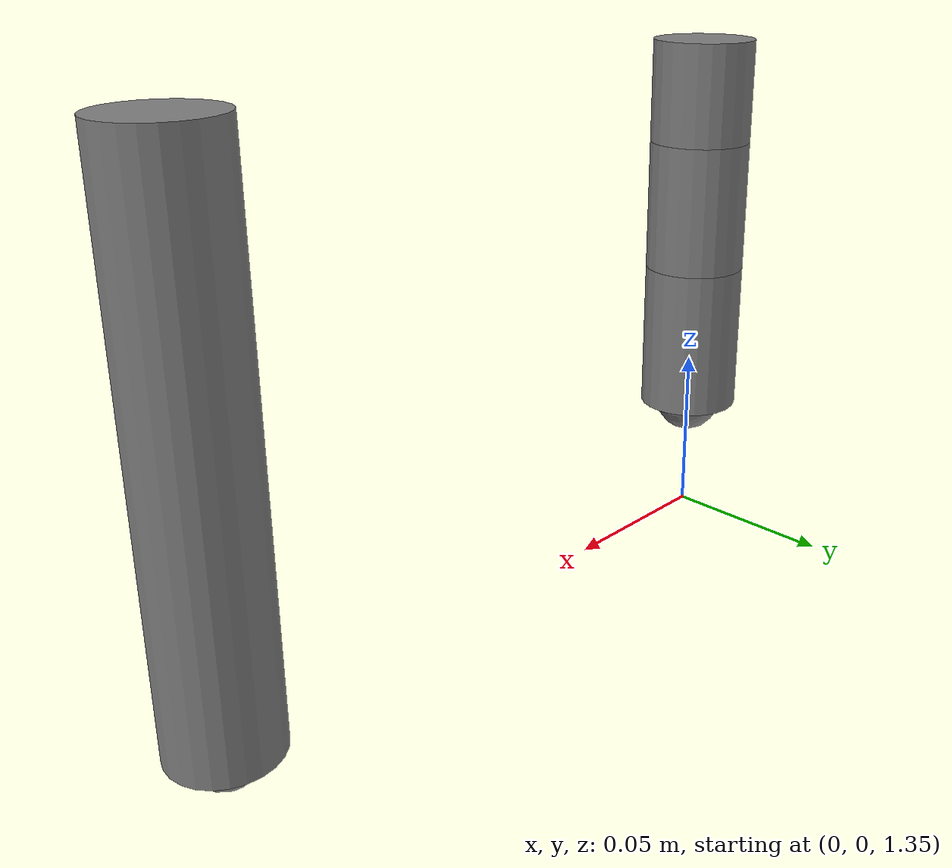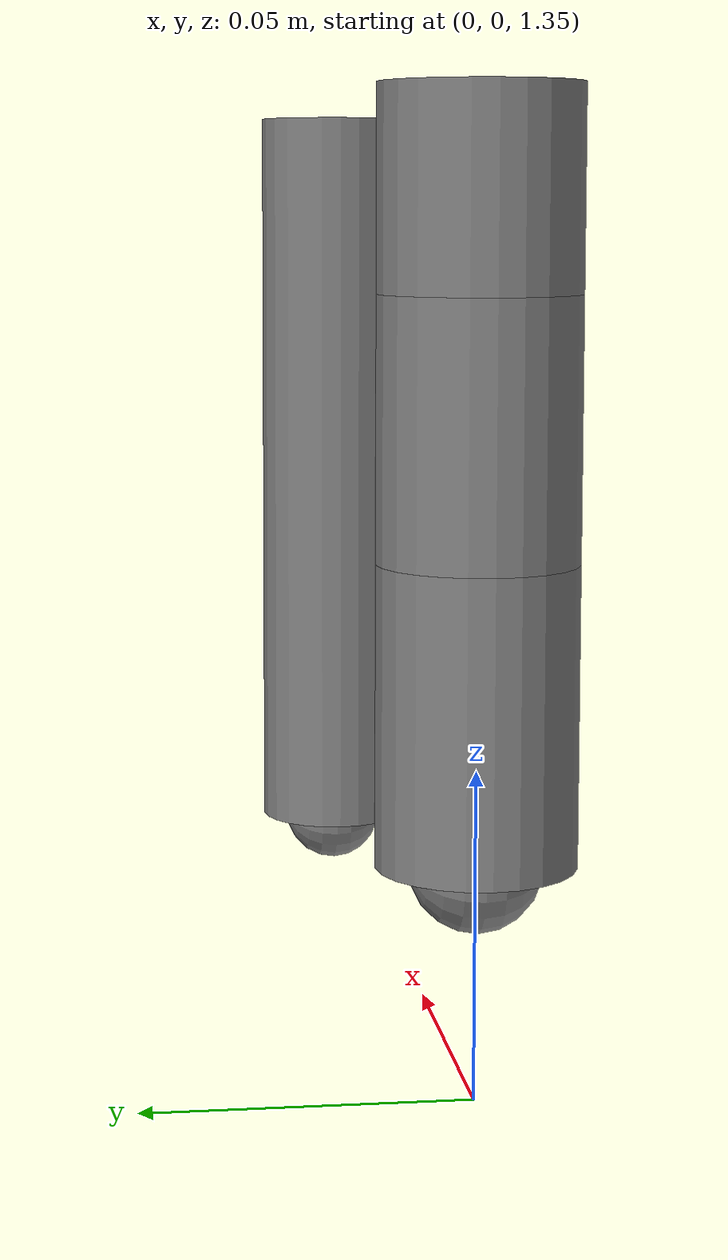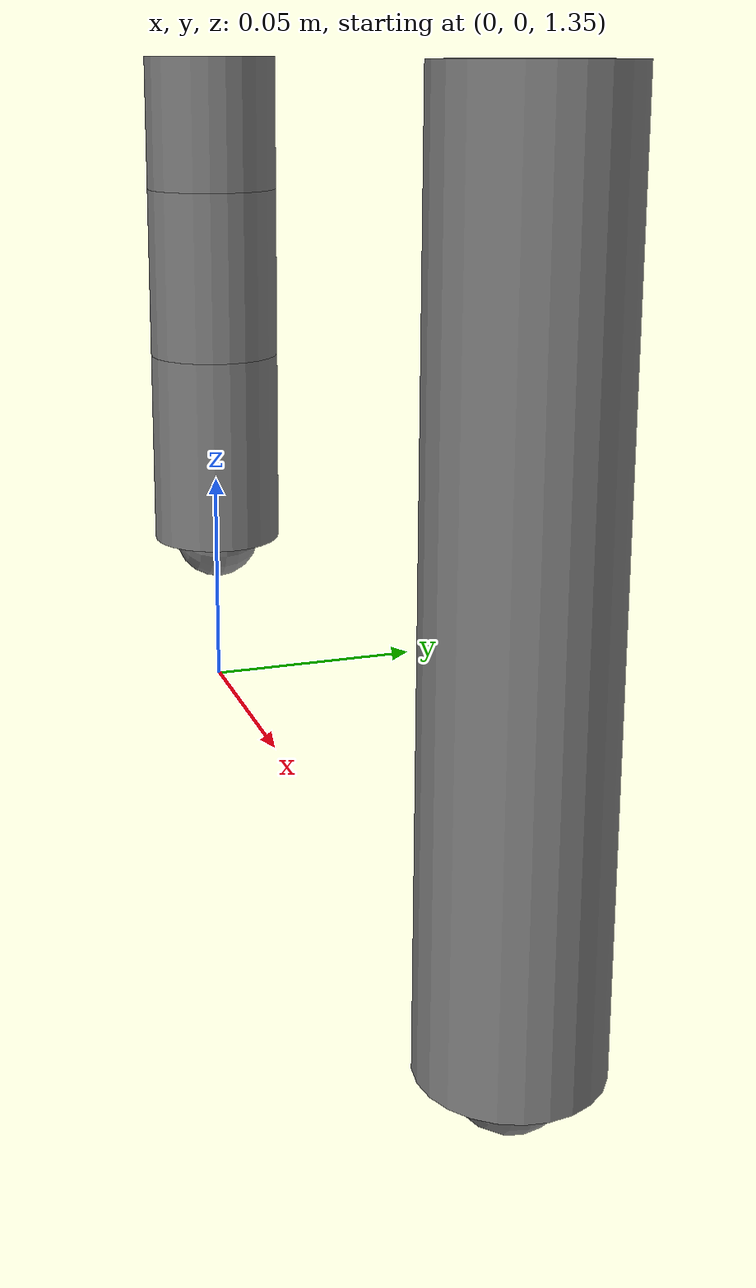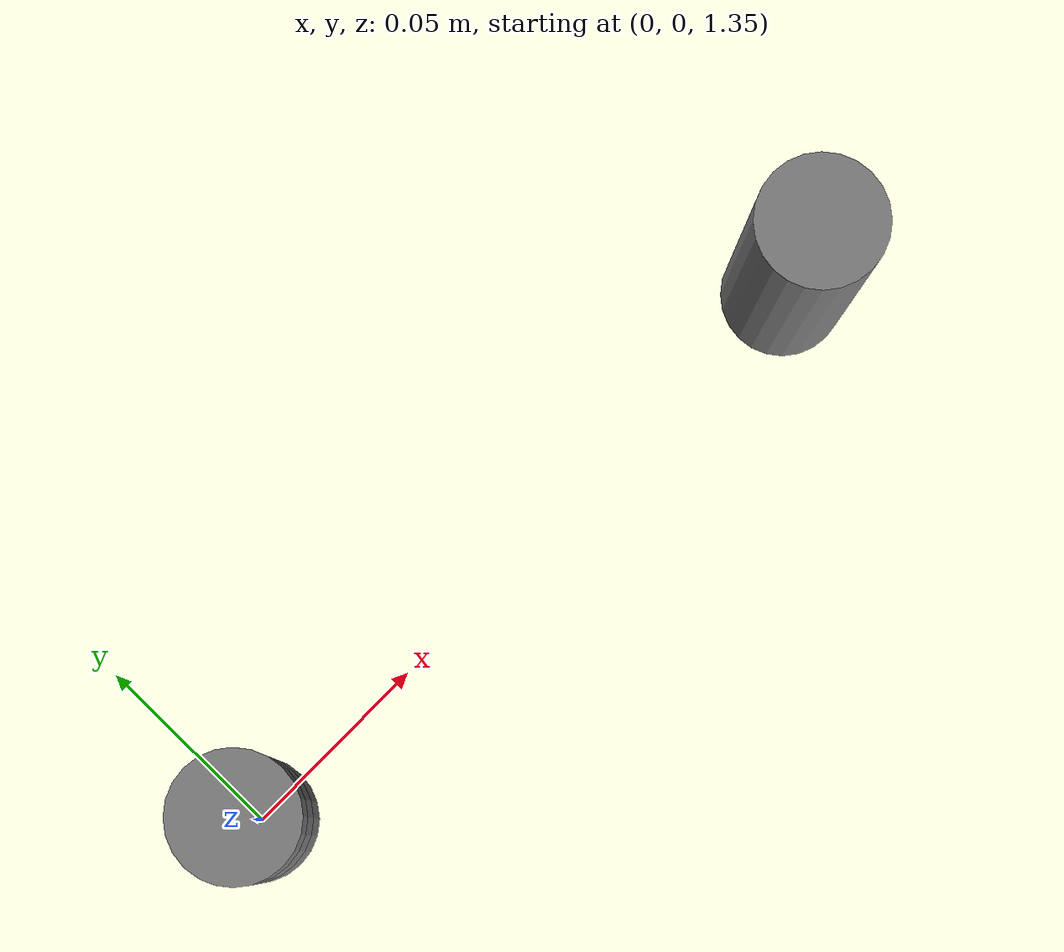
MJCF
<?xml version='1.0' encoding='UTF-8'?>
<mujoco>

    <option timestep="1e-4" gravity="0 0 -9.8"/>

    <asset>
        <texture type="skybox" builtin="gradient"
            rgb1="1 1 1" rgb2="0.5 0.5 0.5"
            width="256" height="256"/>
        <texture name="grid" type="2d" builtin="checker"
            rgb1="0.1 0.1 0.1" rgb2="0.6 0.6 0.6"
            width="256" height="256"/>
        <material name="grid" texture="grid" texrepeat="10 10"/>
    </asset>

    <worldbody>
        <light pos="0 0 10"/>
        <geom type="plane" size="0.5 0.5 0.1" material="grid"/>

        <camera name="side" pos="0.1 -1.5 1.0" euler="90 0 0" fovy="60"/>
        <camera name="top"  pos="0 0 1.5" euler="0 0 0"/>

        <!-- LEFT BRANCH -->
        <body name="ABC1P" pos="0 0 1.5" euler="90 0 0">
            <joint name="A" type="hinge" axis="0 0 1"/>

            <geom name="linkAB" type="cylinder"
                pos="0 -0.015 0" size="0.015 0.015" euler="90 0 0"/>

            <body name="BC1" pos="0 -0.03 0">
                <joint name="B" type="hinge" axis="0 0 1" damping="0.1"/>

                <geom name="linkBC" type="cylinder"
                    pos="0 -0.0195 0" size="0.015 0.0195" euler="90 0 0"/>

                <site name="sC1" size="0.01" pos="0 -0.039 0"/>

                <body name="CP" pos="0 -0.039 0">
                    <geom name="linkCP" type="cylinder"
                        pos="0 -0.0225 0" size="0.015 0.0225" euler="90 0 0"/>
                    <site name="sP" size="0.01" pos="0 -0.045 0"/>
                </body>
            </body>
        </body>

        <!-- RIGHT BRANCH -->
        <body name="DC2" pos="0.18 0 1.5" euler="90 0 0">
            <joint name="D" type="hinge" axis="0 0 1" damping="0.1"/>

            <geom name="linkDC" type="cylinder"
                pos="0 -0.075 0" size="0.015 0.075" euler="90 0 0"/>
            <site name="sC2" size="0.01" pos="0 -0.15 0"/>
        </body>

    </worldbody>

    <equality>
        <connect site1="sC1" site2="sC2"/>
    </equality>

    <actuator>
        <motor name="A_motor" joint="A" ctrlrange="-5 5" gear="1"/>
    </actuator>

    <sensor>
        <jointpos name="q1_pos" joint="A"/>
        <jointvel name="q1_vel" joint="A"/>
        <framepos name="P_pos" objtype="site" objname="sP"/>
    </sensor>

</mujoco>
